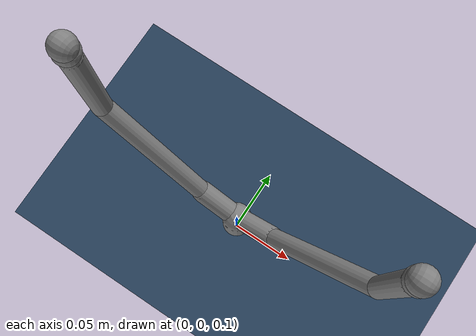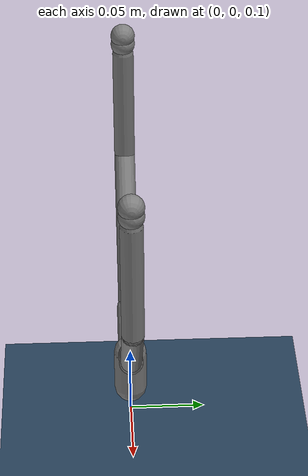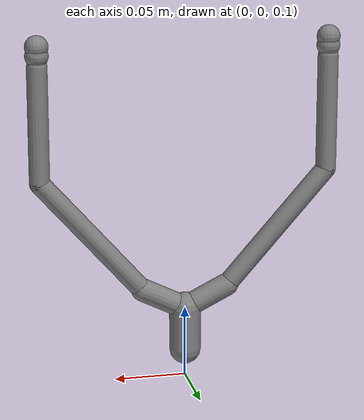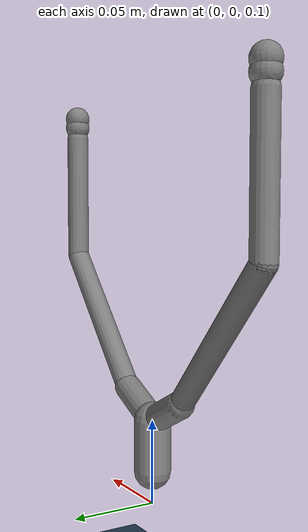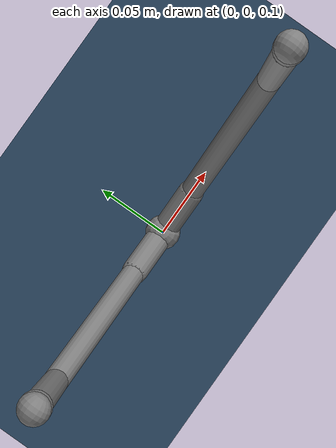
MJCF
<mujoco model="digit scene">

  <include file="primitives/gripper.xml"/>

  <statistic center="0 0 0.55" extent="1.1"/>

  <visual>
    <headlight diffuse="0.6 0.6 0.6"  ambient="0.3 0.3 0.3" specular="0 0 0"/>
    <rgba haze="0.15 0.25 0.35 1"/>
    <global azimuth="150" elevation="-20"/>
  </visual>

  <asset>
    <texture type="skybox" builtin="gradient" rgb1="0.3 0.5 0.7" rgb2="0 0 0" width="512"
        height="3072"/>
    <texture type="2d" name="groundplane" builtin="checker" mark="edge" rgb1="0.2 0.3 0.4"
        rgb2="0.1 0.2 0.3" markrgb="0.8 0.8 0.8" width="300" height="300"/>
    <material name="groundplane" texture="groundplane" texuniform="true" texrepeat="2.5 2.5"
        reflectance="0.2"/>
  </asset>

  <worldbody>
     <light pos="0 0 3" dir="0 0 -1"  directional="false"/>
    <geom name="floor" size="0 0 .125" type="plane" material="groundplane" conaffinity="15" condim="3" friction='1.0 0.005 0.0001' pos='0 0 0' priority='100'/>
  </worldbody>

</mujoco>

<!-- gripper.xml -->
<mujoco model="planar manipulator">

  <visual>
    <map shadowclip=".5"/>
    <quality shadowsize="2048"/>
  </visual>>

  <option timestep="0.001" cone="elliptic"/>

  <default>
    <general ctrllimited="true"/>
    <tendon width="0.01"/>
    <site size=".003 .003 .003"  group="3"/>

    <default class="arm">
      <geom type="capsule"  density="500"/>
      <joint type="hinge" pos="0 0 0" axis="0 -1 0" limited="true"/>
      <default class="hand">
        <joint damping=".5" range="-10 60"/>
        <geom size=".008"/>
        <site  type="box" size=".018 .005 .005" pos=".022 0 -.002" euler="0 15 0" group="4"/>
        <default class="fingertip">
          <geom type="sphere" size=".008"  />
          <joint damping=".01" stiffness=".01" range="-40 20"/>
          <site  size=".012 .005 .008" pos=".003 0 .003" group="4" euler="0 0 0"/>
        </default>
      </default>
    </default>

    <default class="object">
    </default>

    <default class="task">
      <site rgba="0 0 0 0"/>
    </default>

    <default class="obstacle">
      <geom  friction="0"/>
    </default>

    <default class="ghost">
      <geom   contype="0" conaffinity="0"/>
    </default>
  </default>

  <worldbody>

    <!-- Arm -->
    <body  name="hand" pos="0 0 .12" childclass="arm">
        <joint name="arm_wrist" damping="0.5" range="-140 140" />
        <geom  name="hand" size=".011" fromto="0 0 0 0 0 .03"/>
        <geom  name="palm1"  fromto="0 0 .03  .03 0 .045" class="hand"/>
        <geom  name="palm2"  fromto="0 0 .03 -.03 0 .045" class="hand"/>
        <site  name="grasp" pos="0 0 .065"/>
        <body  name="pinch site" pos="0 0 .090">
            <site  name="pinch"/>
            <inertial pos="0 0 0" mass="1e-6" diaginertia="1e-12 1e-12 1e-12"/>
            <camera name="hand" pos="0 -.3 0" xyaxes="1 0 0 0 0 1" mode="track"/>
        </body>
        <site  name="palm_touch" type="box" group="4" size=".025 .005 .008" pos="0 0 .043"/>

        <body name="thumb" pos=".03 0 .045" euler="0 -90 0" childclass="hand">
            <joint name="thumb"/>
            <geom  name="thumb1"  fromto="0 0 0 .08 0.0 -.07" size=".007"/>
            <geom  name="thumb2"  fromto=".08 0.0 -.07 .16 0.0 -.07" size=".007"/>
            <site  name="thumb_touch" group="4"/>
            <body  name="thumbtip" pos=".17 0.0 -.07" childclass="fingertip">
                <joint name="thumbtip"/>
                <geom  name="thumbtip1" pos="-.003 0 0" />
                <geom  name="thumbtip2" pos=".003 0 0" />
                <site  name="thumbtip_touch" group="4"/>
            </body>
        </body>

        <body name="finger" pos="-.03 0 .045" euler="0 90 180" childclass="hand">
            <joint name="finger"/>
            <geom  name="finger1"  fromto="0 0 0 .08 0.0 -.07" size=".007" />
            <geom  name="finger2"  fromto=".08 0.0 -.07 .16 0.0 -.07" size=".007"/>
            <site  name="finger_touch"/>
            <body  name="fingertip" pos=".17 0.0 -.07" childclass="fingertip">
                <joint name="fingertip"/>
                <geom  name="fingertip1" pos="-.003 0 0" />
                <geom  name="fingertip2" pos=".003 0 0" />
                <site  name="fingertip_touch"/>
            </body>
        </body>
    </body>

  </worldbody>

  <tendon>
    <fixed name="grasp">
      <joint joint="thumb"  coef=".5"/>
      <joint joint="finger" coef=".5"/>
    </fixed>
    <fixed name="coupling">
      <joint joint="thumb"  coef="-.5"/>
      <joint joint="finger" coef=".5"/>
    </fixed>
  </tendon>

  <equality>
    <tendon name="coupling" tendon1="coupling" solimp="0.95 0.99 0.001" solref=".005 .5"/>
  </equality>

  <sensor>
    <touch name="palm_touch" site="palm_touch"/>
    <touch name="finger_touch" site="finger_touch"/>
    <touch name="thumb_touch" site="thumb_touch"/>
    <touch name="fingertip_touch" site="fingertip_touch"/>
    <touch name="thumbtip_touch" site="thumbtip_touch"/>
  </sensor>

  <actuator>
    <motor name="wrist"    joint="arm_wrist" ctrlrange="-1 1"  gear="2"/>
    <motor name="grasp"    tendon="grasp"       ctrlrange="-1 1"  gear="2"/>
  </actuator>

</mujoco>
